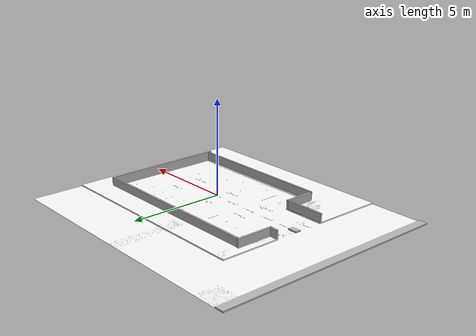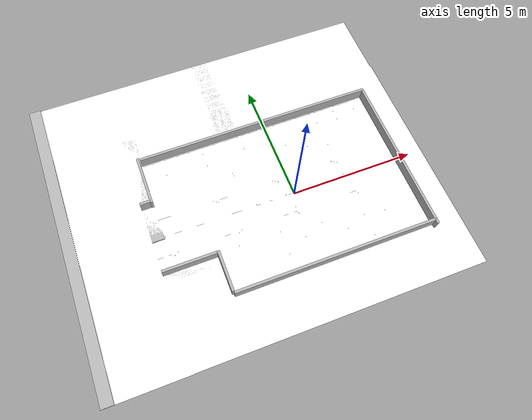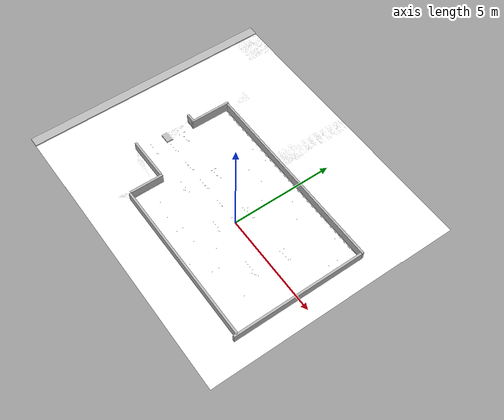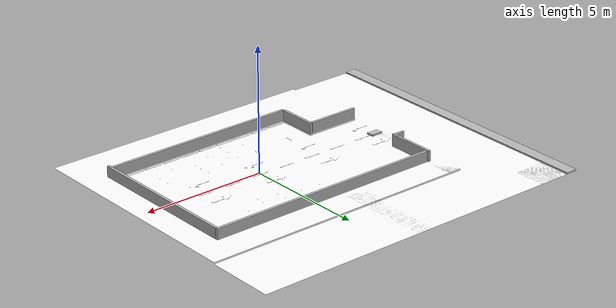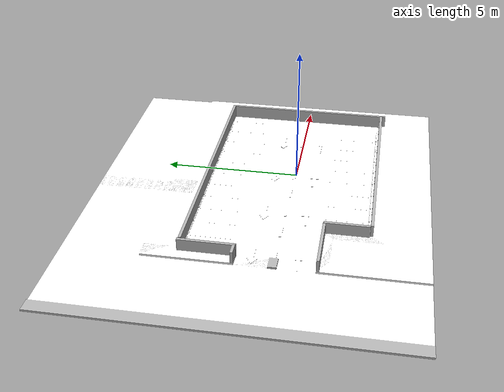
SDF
<sdf version="1.11">
 <world name="default">
  <physics name="4ms" type="ignored">
   <max_step_size>0.004</max_step_size>
   <real_time_factor>1.0</real_time_factor>
  </physics>
  <plugin filename="gz-sim-physics-system" name="gz::sim::systems::Physics"/>
  <plugin filename="gz-sim-user-commands-system" name="gz::sim::systems::UserCommands"/>
  <plugin filename="gz-sim-scene-broadcaster-system" name="gz::sim::systems::SceneBroadcaster"/>
  <plugin filename="gz-sim-sensors-system" name="gz::sim::systems::Sensors">
   <render_engine>ogre2</render_engine>
  </plugin>
  <plugin filename="gz-sim-imu-system" name="gz::sim::systems::Imu"/>
  <plugin filename="gz-sim-magnetometer-system" name="gz::sim::systems::Magnetometer"/>
  <scene><grid>false</grid></scene>
  <include><uri>https://fuel.gazebosim.org/1.0/OpenRobotics/models/Sun</uri></include>
  <include><uri>model://parking_lot</uri></include>
  <model name="wall_1">
   <link name="link">
    <visual name="visual"><geometry><box><size>0.1 6.4 0.5</size></box></geometry></visual>
    <collision name="collision"><geometry><box><size>0.1 6.4 0.5</size></box></geometry></collision>
   </link>
   <static>1</static>
   <pose>4.42 0 0.25 0 0 0</pose>
  </model>
  <model name="wall_2">
   <link name="link">
    <visual name="visual"><geometry><box><size>0.1 9.7 0.5</size></box></geometry></visual>
    <collision name="collision"><geometry><box><size>0.1 9.7 0.5</size></box></geometry></collision>
   </link>
   <static>1</static>
   <pose>-0.39 3.26 0.25 0 0 1.5707</pose>
  </model>
  <model name="wall_3">
   <link name="link">
    <visual name="visual"><geometry><box><size>0.1 8.0 0.5</size></box></geometry></visual>
    <collision name="collision"><geometry><box><size>0.1 8.0 0.5</size></box></geometry></collision>
   </link>
   <static>1</static>
   <pose>0.42 -3.02 0.25 0 0 1.5707</pose>
  </model>
  <model name="wall_4">
   <link name="link">
    <visual name="visual"><geometry><box><size>0.1 2.0 0.5</size></box></geometry></visual>
    <collision name="collision"><geometry><box><size>0.1 2.0 0.5</size></box></geometry></collision>
   </link>
   <static>1</static>
   <pose>-5.33 2.34 0.25 0 0 0</pose>
  </model>
  <model name="wall_5">
   <link name="link">
    <visual name="visual"><geometry><box><size>0.1 1.6 0.5</size></box></geometry></visual>
    <collision name="collision"><geometry><box><size>0.1 1.6 0.5</size></box></geometry></collision>
   </link>
   <static>1</static>
   <pose>-3.6 -2.16 0.25 0 0 0</pose>
  </model>
  <model name="wall_6">
   <link name="link">
    <visual name="visual"><geometry><box><size>0.1 2.1 0.5</size></box></geometry></visual>
    <collision name="collision"><geometry><box><size>0.1 2.1 0.5</size></box></geometry></collision>
   </link>
   <static>1</static>
   <pose>-4.71 -1.40 0.25 0 0 1.5707</pose>
  </model>
  <model name="wall_7">
   <link name="link">
    <visual name="visual"><geometry><box><size>0.1 0.43 0.5</size></box></geometry></visual>
    <collision name="collision"><geometry><box><size>0.1 0.43 0.5</size></box></geometry></collision>
   </link>
   <static>1</static>
   <pose>-5.56 1.41 0.25 0 0 1.5707</pose>
  </model>
 </world>
</sdf>

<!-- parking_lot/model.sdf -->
<sdf version="1.11">
    <model name="parking lot">
        <static>true</static>
        <link name="base_link">
            <visual name="parking_lot_visual">
                <pose relative_to="__model__">-9 8.5 0 0 0 -1.5707</pose>
                <geometry>
                    <mesh>
                      <uri>meshes/temp_export.dae</uri>
                      <scale>0.3 0.3 0.3</scale>
                    </mesh>
                  </geometry>
            </visual>
            <collision name="parking_lot_collision">
                <pose relative_to="__model__">-2 1 0 0 0 0</pose>
                <geometry>
                    <plane>
                        <normal>0 0 1</normal>
                        <size>15 12</size>
                    </plane>
                </geometry>
            </collision>
        </link>
    </model>
</sdf>
